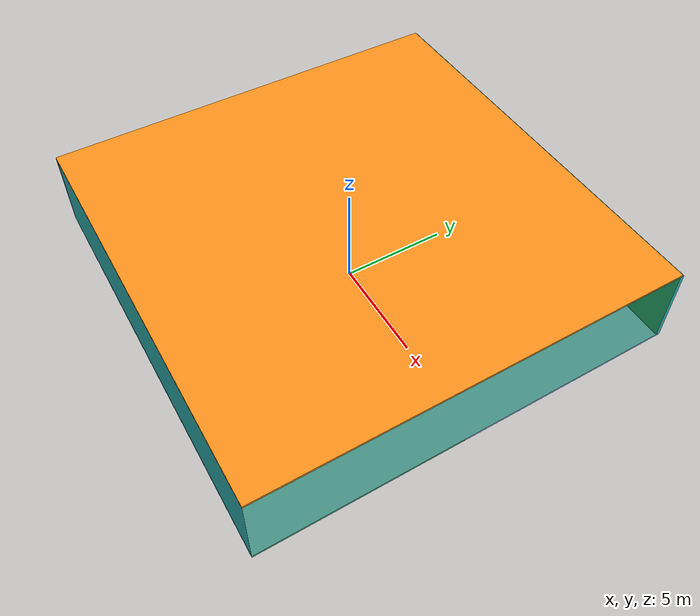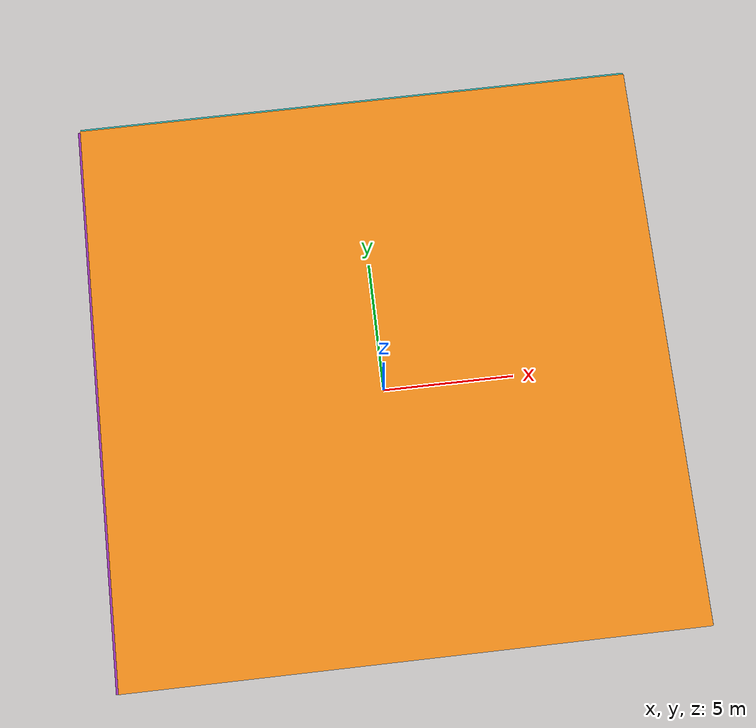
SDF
<sdf version="1.4">
 <world name="default">
  <physics type="ode">
   <max_step_size>0.001</max_step_size>
   <real_time_factor>1</real_time_factor>
   <real_time_update_rate>1000</real_time_update_rate>
   <gravity>0 0 -9.8</gravity>
  </physics>
  <scene><ambient>0.4 0.4 0.4 1</ambient><background>0.7 0.7 0.7 1</background><shadows>1</shadows></scene>
  <model name="Surrounding">
   <static>1</static>
   <link name="Ceiling">
    <collision name="Ceiling_Collision"><geometry><box><size>20 20 0.1</size></box></geometry></collision>
    <visual name="Ceiling_Visual">
     <geometry><box><size>20 20 0.1</size></box></geometry>
     <material>
      <script><uri>file://media/materials/scripts/gazebo.material</uri><name>Gazebo/Orange</name></script>
     </material>
    </visual>
    <pose>0 0 4.05 0 0 0</pose>
   </link>
   <link name="Wall_South">
    <collision name="Wall_South_Collision">
     <geometry><box><size>20 0 4</size></box></geometry>
     <pose>0 0 2 0 -0 0</pose>
    </collision>
    <visual name="Wall_South_Visual">
     <pose>0 0 2 0 -0 0</pose>
     <geometry><box><size>20 0 4</size></box></geometry>
     <material>
      <script><uri>file://media/materials/scripts/gazebo.material</uri><name>Gazebo/Turquoise</name></script>
     </material>
    </visual>
    <velocity_decay><linear>0</linear><angular>0</angular></velocity_decay>
    <pose>0 -10 0 0 -0 0</pose>
   </link>
   <link name="Wall_East">
    <collision name="Wall_21_Collision">
     <geometry><box><size>20 0 4</size></box></geometry>
     <pose>0 0 2 0 -0 0</pose>
    </collision>
    <visual name="Wall_21_Visual">
     <pose>0 0 2 0 -0 0</pose>
     <geometry><box><size>20 0 4</size></box></geometry>
     <material>
      <script><uri>file://media/materials/scripts/gazebo.material</uri><name>Gazebo/GreenTransparent</name></script>
     </material>
    </visual>
    <velocity_decay><linear>0</linear><angular>0</angular></velocity_decay>
    <pose>10 0 0 0 -0 1.5708</pose>
   </link>
   <link name="Wall_North">
    <collision name="Wall_22_Collision">
     <geometry><box><size>20 0.2 4</size></box></geometry>
     <pose>0 0 2 0 -0 0</pose>
    </collision>
    <visual name="Wall_22_Visual">
     <pose>0 0 2 0 -0 0</pose>
     <geometry><box><size>20 0.2 4</size></box></geometry>
     <material>
      <script><uri>file://media/materials/scripts/gazebo.material</uri><name>Gazebo/Turquoise</name></script>
     </material>
    </visual>
    <velocity_decay><linear>0</linear><angular>0</angular></velocity_decay>
    <pose>0 10 0 0 -0 0</pose>
   </link>
   <link name="Wall_West">
    <collision name="Wall_23_Collision">
     <geometry><box><size>20 0.2 4</size></box></geometry>
     <pose>0 0 2 0 -0 0</pose>
    </collision>
    <visual name="Wall_23_Visual">
     <pose>0 0 2 0 -0 0</pose>
     <geometry><box><size>20 0.2 4</size></box></geometry>
     <material>
      <script><uri>file://media/materials/scripts/gazebo.material</uri><name>Gazebo/PurpleGlow</name></script>
     </material>
    </visual>
    <velocity_decay><linear>0</linear><angular>0</angular></velocity_decay>
    <pose>-10 0 0 0 0 -1.5708</pose>
   </link>
   <link name="Ground_link">
    <collision name="collision">
     <pose>0 0 .05 0 -0 0</pose>
     <geometry><box><size>20 20 0.1</size></box></geometry>
    </collision>
    <visual name="visual">
     <pose>0 0 .05 0 -0 0</pose>
     <geometry><box><size>20 20 0.1</size></box></geometry>
     <material>
      <script><uri>file://media/materials/scripts/gazebo.material</uri><name>Gazebo/SkyBlue</name></script>
     </material>
    </visual>
   </link>
   <static>1</static>
  </model>
  <spherical_coordinates>
   <surface_model>EARTH_WGS84</surface_model>
   <latitude_deg>0</latitude_deg>
   <longitude_deg>0</longitude_deg>
   <elevation>0</elevation>
   <heading_deg>0</heading_deg>
  </spherical_coordinates>
  <light name="lightball_0" type="diffuse">
   <diffuse>0.8 0.8 0.8 1</diffuse>
   <specular>0.2 0.2 0.2 1</specular>
   <attenuation>
    <range>100</range>
    <constant>0.7</constant>
    <linear>0.01</linear>
    <quadratic>0.001</quadratic>
   </attenuation>
   <direction>-0.5 0.1 -0.9</direction>
   <pose>-8.71828033045 -4.56370588612 0.969269305875 0 0 0</pose>
  </light>
  <light name="lightball_1" type="diffuse">
   <diffuse>0.8 0.8 0.8 1</diffuse>
   <specular>0.2 0.2 0.2 1</specular>
   <attenuation>
    <range>100</range>
    <constant>0.7</constant>
    <linear>0.01</linear>
    <quadratic>0.001</quadratic>
   </attenuation>
   <direction>-0.5 0.1 -0.9</direction>
   <pose>-6.14744721082 4.55579930645 3.43203962406 0 0 0</pose>
  </light>
  <light name="lightball_2" type="diffuse">
   <diffuse>0.8 0.8 0.8 1</diffuse>
   <specular>0.2 0.2 0.2 1</specular>
   <attenuation>
    <range>100</range>
    <constant>0.7</constant>
    <linear>0.01</linear>
    <quadratic>0.001</quadratic>
   </attenuation>
   <direction>-0.5 0.1 -0.9</direction>
   <pose>8.10795569553 2.61235068331 2.53800841223 0 0 0</pose>
  </light>
  <light name="lightball_3" type="diffuse">
   <diffuse>0.8 0.8 0.8 1</diffuse>
   <specular>0.2 0.2 0.2 1</specular>
   <attenuation>
    <range>100</range>
    <constant>0.7</constant>
    <linear>0.01</linear>
    <quadratic>0.001</quadratic>
   </attenuation>
   <direction>-0.5 0.1 -0.9</direction>
   <pose>0.415416158883 -4.9425201755 1.31862442549 0 0 0</pose>
  </light>
  <light name="lightball_4" type="diffuse">
   <diffuse>0.8 0.8 0.8 1</diffuse>
   <specular>0.2 0.2 0.2 1</specular>
   <attenuation>
    <range>100</range>
    <constant>0.7</constant>
    <linear>0.01</linear>
    <quadratic>0.001</quadratic>
   </attenuation>
   <direction>-0.5 0.1 -0.9</direction>
   <pose>3.83984761828 4.09775567066 3.03500045637 0 0 0</pose>
  </light>
  <light name="lightball_5" type="diffuse">
   <diffuse>0.8 0.8 0.8 1</diffuse>
   <specular>0.2 0.2 0.2 1</specular>
   <attenuation>
    <range>100</range>
    <constant>0.7</constant>
    <linear>0.01</linear>
    <quadratic>0.001</quadratic>
   </attenuation>
   <direction>-0.5 0.1 -0.9</direction>
   <pose>9.58838212601 -9.35364632262 0.566316445319 0 0 0</pose>
  </light>
  <light name="lightball_6" type="diffuse">
   <diffuse>0.8 0.8 0.8 1</diffuse>
   <specular>0.2 0.2 0.2 1</specular>
   <attenuation>
    <range>100</range>
    <constant>0.7</constant>
    <linear>0.01</linear>
    <quadratic>0.001</quadratic>
   </attenuation>
   <direction>-0.5 0.1 -0.9</direction>
   <pose>-2.36281510841 -9.99774457974 3.3882914252 0 0 0</pose>
  </light>
  <light name="lightball_7" type="diffuse">
   <diffuse>0.8 0.8 0.8 1</diffuse>
   <specular>0.2 0.2 0.2 1</specular>
   <attenuation>
    <range>100</range>
    <constant>0.7</constant>
    <linear>0.01</linear>
    <quadratic>0.001</quadratic>
   </attenuation>
   <direction>-0.5 0.1 -0.9</direction>
   <pose>-7.99073767228 -2.36301501083 2.23530151268 0 0 0</pose>
  </light>
  <light name="lightball_8" type="diffuse">
   <diffuse>0.8 0.8 0.8 1</diffuse>
   <specular>0.2 0.2 0.2 1</specular>
   <attenuation>
    <range>100</range>
    <constant>0.7</constant>
    <linear>0.01</linear>
    <quadratic>0.001</quadratic>
   </attenuation>
   <direction>-0.5 0.1 -0.9</direction>
   <pose>-1.39251783988 -2.01016963348 2.88280352734 0 0 0</pose>
  </light>
  <light name="lightball_9" type="diffuse">
   <diffuse>0.8 0.8 0.8 1</diffuse>
   <specular>0.2 0.2 0.2 1</specular>
   <attenuation>
    <range>100</range>
    <constant>0.7</constant>
    <linear>0.01</linear>
    <quadratic>0.001</quadratic>
   </attenuation>
   <direction>-0.5 0.1 -0.9</direction>
   <pose>3.63343884297 -3.65228418562 2.05834227455 0 0 0</pose>
  </light>
  <light name="lightball_10" type="diffuse">
   <diffuse>0.8 0.8 0.8 1</diffuse>
   <specular>0.2 0.2 0.2 1</specular>
   <attenuation>
    <range>100</range>
    <constant>0.7</constant>
    <linear>0.01</linear>
    <quadratic>0.001</quadratic>
   </attenuation>
   <direction>-0.5 0.1 -0.9</direction>
   <pose>9.97744629224 -7.471200542 1.76138892257 0 0 0</pose>
  </light>
  <light name="lightball_11" type="diffuse">
   <diffuse>0.8 0.8 0.8 1</diffuse>
   <specular>0.2 0.2 0.2 1</specular>
   <attenuation>
    <range>100</range>
    <constant>0.7</constant>
    <linear>0.01</linear>
    <quadratic>0.001</quadratic>
   </attenuation>
   <direction>-0.5 0.1 -0.9</direction>
   <pose>1.55371911625 5.09859321257 1.04773560662 0 0 0</pose>
  </light>
  <light name="lightball_12" type="diffuse">
   <diffuse>0.8 0.8 0.8 1</diffuse>
   <specular>0.2 0.2 0.2 1</specular>
   <attenuation>
    <range>100</range>
    <constant>0.7</constant>
    <linear>0.01</linear>
    <quadratic>0.001</quadratic>
   </attenuation>
   <direction>-0.5 0.1 -0.9</direction>
   <pose>-7.78711194901 -8.1419448856 1.44121170986 0 0 0</pose>
  </light>
  <light name="lightball_13" type="diffuse">
   <diffuse>0.8 0.8 0.8 1</diffuse>
   <specular>0.2 0.2 0.2 1</specular>
   <attenuation>
    <range>100</range>
    <constant>0.7</constant>
    <linear>0.01</linear>
    <quadratic>0.001</quadratic>
   </attenuation>
   <direction>-0.5 0.1 -0.9</direction>
   <pose>8.56391166968 -2.86424471574 1.71433585082 0 0 0</pose>
  </light>
  <include>
   <uri>model://construction_cone</uri>
   <pose>0.732226337444 -2.21285769675 0 0 0 2.3666510903</pose>
  </include>
  <include><uri>model://cabinet</uri><pose>1.51179013597 8.2516344491 0 0 0 2.75753488479</pose></include>
  <include><uri>model://cabinet</uri><pose>4.97744335643 6.90124721082 0 0 0 1.59952891019</pose></include>
  <include><uri>model://cabinet</uri><pose>7.72904028181 -4.6373203347 0 0 0 0.910023217962</pose></include>
 </world>
</sdf>

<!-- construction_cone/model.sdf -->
<sdf version="1.5">
  <model name="Construction Cone">
    <link name="link">
      <collision name="collision">
        <geometry>
          <mesh>
            <scale>10 10 10</scale>
            <uri>file://isr-testbed/construction_cone/meshes/construction_cone.dae</uri>
          </mesh>
        </geometry>
      </collision>
      <visual name="visual">
        <geometry>
          <mesh>
            <scale>10 10 10</scale>
            <uri>file://isr-testbed/construction_cone/meshes/construction_cone.dae</uri>
          </mesh>
        </geometry>
      </visual>
    </link>
  </model>
</sdf>

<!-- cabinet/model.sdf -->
<sdf version="1.5">
  <model name="cabinet">
    <static>true</static>
    <link name="cabinet_bottom_plate">
      <inertial>
        <pose>0 0 -1 0 0 0</pose>
        <inertia>
          <ixx>2.050000</ixx>
          <ixy>0</ixy>
          <ixz>0</ixz>
          <iyy>2.050000</iyy>
          <iyz>0</iyz>
          <izz>2.050000</izz>
        </inertia>
        <mass>25.000000</mass>
      </inertial>
      <collision name="cabinet_bottom_plate_geom">
        <pose>0 0 0.010000 0 0 0</pose>
        <geometry>
          <box>
            <size>0.450000 0.450000 0.020000</size>
          </box>
        </geometry>
      </collision>
      <visual name="cabinet_bottom_plate_geom_visual">
        <pose>0 0 0.010000 0 0 0</pose>
        <geometry>
          <box>
            <size>0.450000 0.450000 0.020000</size>
          </box>
        </geometry>
        <material>
          <script>
            <uri>model://media/materials/scripts/gazebo.material</uri>
            <name>Gazebo/Wood</name>
          </script>
        </material>
      </visual>
      <collision name="cabinet_bottom_plate_geom_cabinet_back_plate">
        <pose>0.235000 0 0.510000 0 0 0</pose>
        <geometry>
          <box>
            <size>0.020000 0.450000 1.020000</size>
          </box>
        </geometry>
      </collision>
      <visual name="cabinet_bottom_plate_geom_cabinet_back_plate_visual">
        <pose>0.235000 0 0.510000 0 0 0</pose>
        <geometry>
          <box>
            <size>0.020000 0.450000 1.020000</size>
          </box>
        </geometry>
        <material>
          <script>
            <uri>model://media/materials/scripts/gazebo.material</uri>
            <name>Gazebo/Wood</name>
          </script>
        </material>
      </visual>
      <collision name="cabinet_bottom_plate_geom_cabinet_left_plate">
        <pose>0 0.235000 0.510000 0 0 0</pose>
        <geometry>
          <box>
            <size>0.450000 0.020000 1.020000</size>
          </box>
        </geometry>
      </collision>
      <visual name="cabinet_bottom_plate_geom_cabinet_left_plate_visual">
        <pose>0 0.235000 0.510000 0 0 0</pose>
        <geometry>
          <box>
            <size>0.450000 0.020000 1.020000</size>
          </box>
        </geometry>
        <material>
          <script>
            <uri>model://media/materials/scripts/gazebo.material</uri>
            <name>Gazebo/Wood</name>
          </script>
        </material>
      </visual>
      <collision name="cabinet_bottom_plate_geom_cabinet_middle_plate">
        <pose>0 0 0.510000 0 0 0</pose>
        <geometry>
          <box>
            <size>0.450000 0.450000 0.020000</size>
          </box>
        </geometry>
      </collision>
      <visual name="cabinet_bottom_plate_geom_cabinet_middle_plate_visual">
        <pose>0 0 0.510000 0 0 0</pose>
        <geometry>
          <box>
            <size>0.450000 0.450000 0.020000</size>
          </box>
        </geometry>
        <material>
          <script>
            <uri>model://media/materials/scripts/gazebo.material</uri>
            <name>Gazebo/Wood</name>
          </script>
        </material>
      </visual>
      <collision name="cabinet_bottom_plate_geom_cabinet_right_plate">
        <pose>0 -0.235000 0.510000 0 0 0</pose>
        <geometry>
          <box>
            <size>0.450000 0.020000 1.020000</size>
          </box>
        </geometry>
      </collision>
      <visual name="cabinet_bottom_plate_geom_cabinet_right_plate_visual">
        <pose>0 -0.235000 0.510000 0 0 0</pose>
        <geometry>
          <box>
            <size>0.450000 0.020000 1.020000</size>
          </box>
        </geometry>
        <material>
          <script>
            <uri>model://media/materials/scripts/gazebo.material</uri>
            <name>Gazebo/Wood</name>
          </script>
        </material>
      </visual>
      <collision name="cabinet_bottom_plate_geom_cabinet_top_plate">
        <pose>0 0 1.010000 0 0 0</pose>
        <geometry>
          <box>
            <size>0.450000 0.450000 0.020000</size>
          </box>
        </geometry>
      </collision>
      <visual name="cabinet_bottom_plate_geom_cabinet_top_plate_visual">
        <pose>0 0 1.010000 0 0 0</pose>
        <geometry>
          <box>
            <size>0.450000 0.450000 0.020000</size>
          </box>
        </geometry>
        <material>
          <script>
            <uri>model://media/materials/scripts/gazebo.material</uri>
            <name>Gazebo/Wood</name>
          </script>
        </material>
      </visual>
    </link>
  </model>
</sdf>
